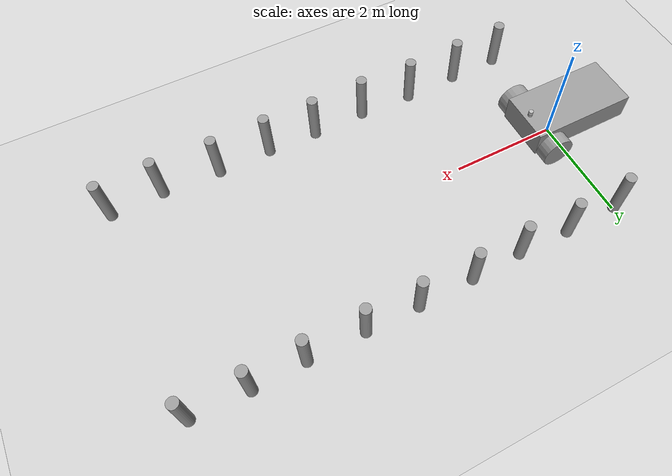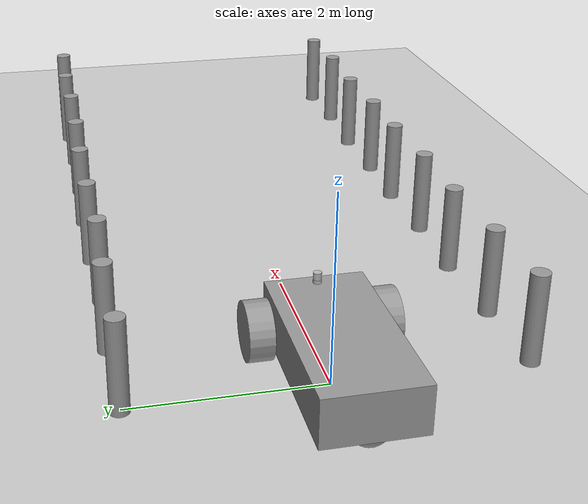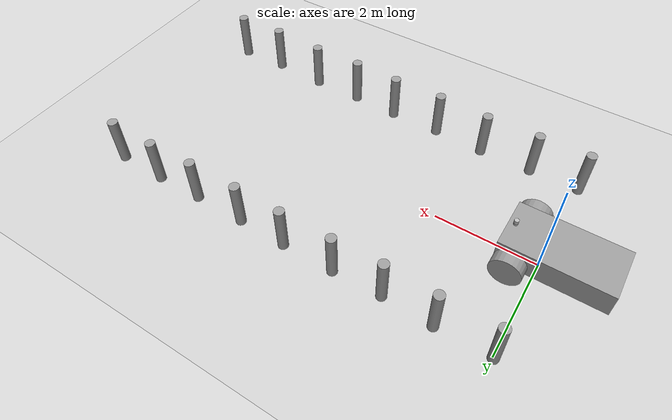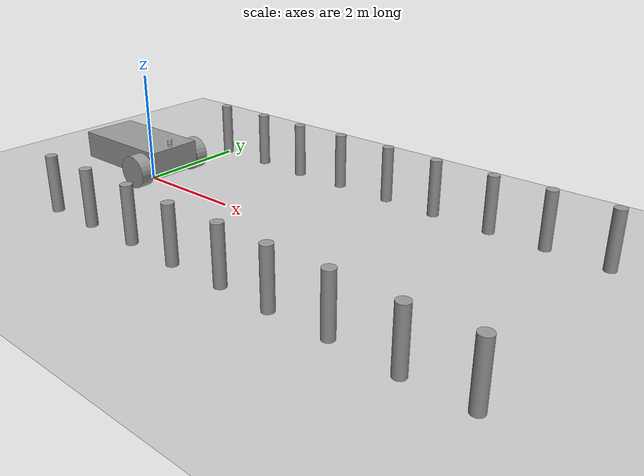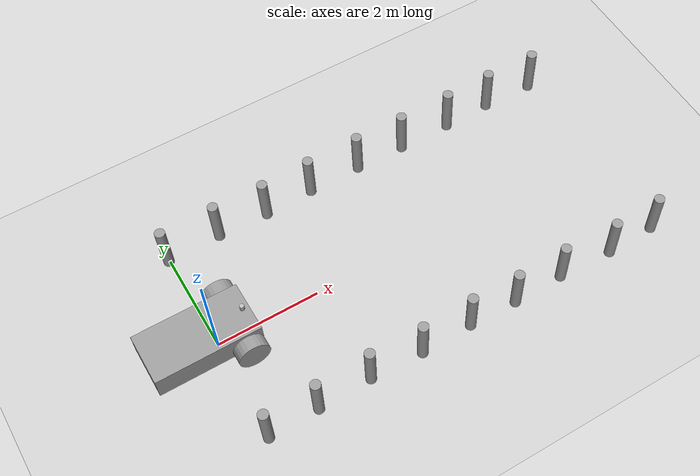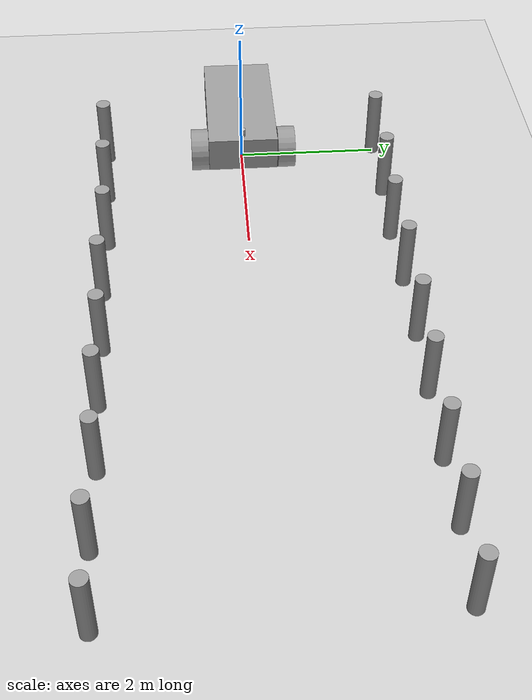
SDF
<?xml version="1.0" ?>
<sdf version="1.6">
  <world name="default">
    <!-- A global light source -->
    <include>
      <uri>model://sun</uri>
    </include>
    <!-- A ground plane -->
    <include>
      <uri>model://ground_plane</uri>
    </include>

    <!-- A testing model that includes the Velodyne sensor model -->
    <model name="robot">
      <include>
        <uri>model://project_robot_sphere</uri>
      </include>

      <!-- Attach the plugin to this model -->
      <plugin name="robot_control" filename="librobot_plugin.so">
        <sensor_velocity>0</sensor_velocity>
        <wheel_1_velocity>0</wheel_1_velocity>
        <wheel_2_velocity>0</wheel_2_velocity>

      </plugin>
    </model>

  </world>
</sdf>
